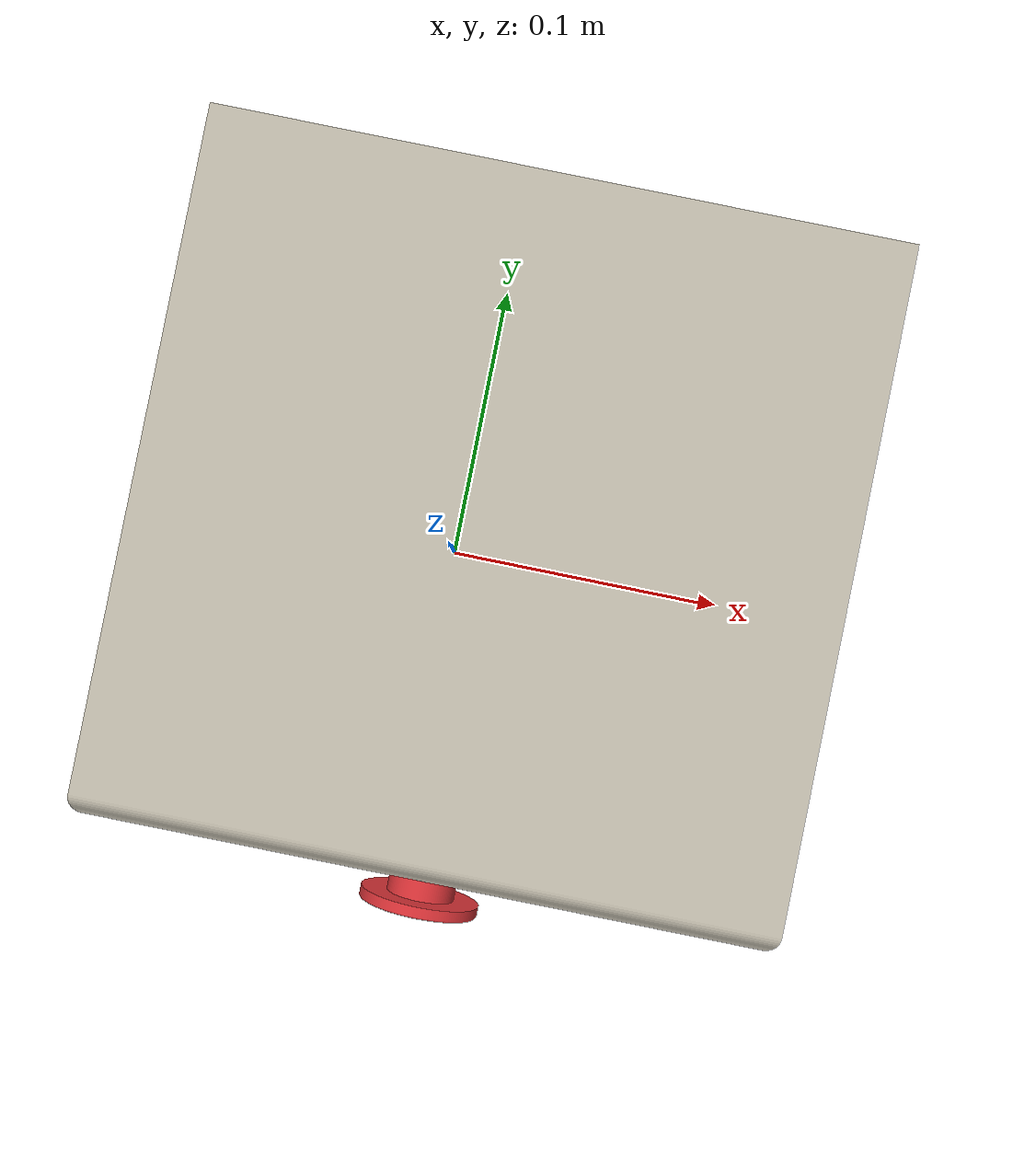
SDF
<?xml version='1.0' ?>
<sdf version='1.6'>
  <model name="button_challenger">
    <pose>0 0 0 0 0 0</pose>
    <static>1</static>
    <link name="workbench1">
      <visual name="visual">
        <geometry>
          <mesh><uri>file://button_challenger/mesh/button.dae</uri></mesh>
        </geometry>
      </visual>
      <collision name='collision'>
        <geometry>
          <mesh><uri>file://button_challenger/mesh/button.dae</uri></mesh>
        </geometry>
        <surface>
          <bounce/>
          <friction>
            <ode/>
          </friction>
          <contact>
            <ode/>
          </contact>
        </surface>
      </collision>
      <gravity>1</gravity>
    </link>
  </model>
</sdf>
